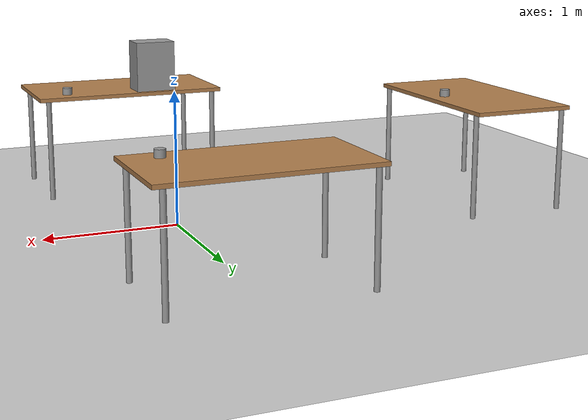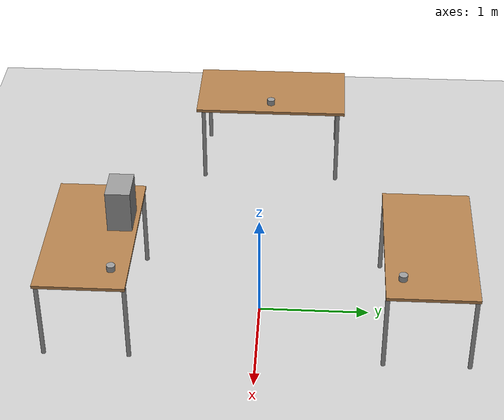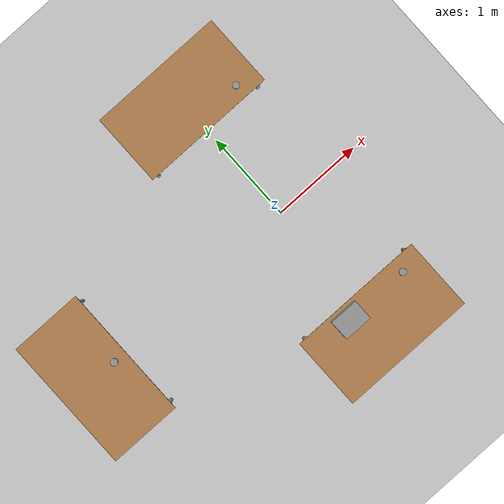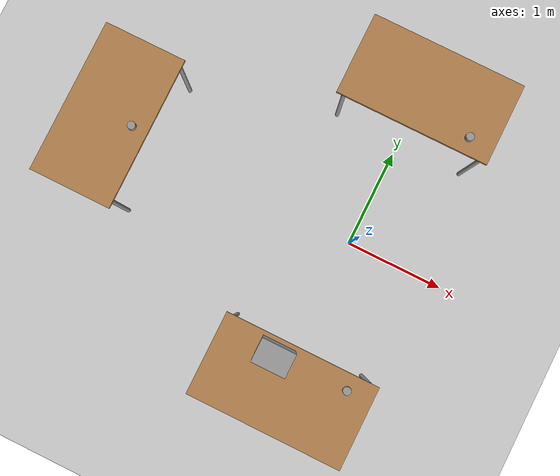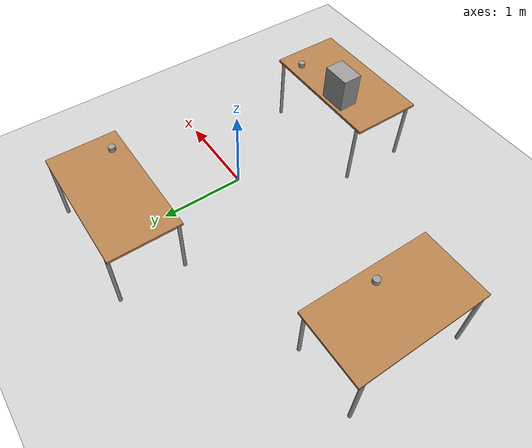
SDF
<sdf version="1.7">
 <world name="default">
  <light name="sun" type="directional">
   <pose>0 0 10 0 -0 0</pose>
   <diffuse>0.8 0.8 0.8 1</diffuse>
   <specular>0.2 0.2 0.2 1</specular>
   <attenuation>
    <range>1000</range>
    <constant>0.9</constant>
    <linear>0.01</linear>
    <quadratic>0.001</quadratic>
   </attenuation>
   <direction>-0.5 0.1 -0.9</direction>
   <spot><inner_angle>0</inner_angle><outer_angle>0</outer_angle><falloff>0</falloff></spot>
  </light>
  <model name="ground_plane">
   <static>1</static>
   <link name="link">
    <collision name="collision">
     <geometry><plane><normal>0 0 1</normal><size>100 100</size></plane></geometry>
     <surface><friction><ode><mu>100</mu><mu2>50</mu2></ode></friction></surface>
    </collision>
    <visual name="visual">
     <cast_shadows>0</cast_shadows>
     <geometry><plane><normal>0 0 1</normal><size>100 100</size></plane></geometry>
     <material>
      <script><uri>file://media/materials/scripts/gazebo.material</uri><name>Gazebo/Grey</name></script>
     </material>
    </visual>
   </link>
  </model>
  <gravity>0 0 -9.8</gravity>
  <magnetic_field>6e-06 2.3e-05 -4.2e-05</magnetic_field>
  <atmosphere type="adiabatic"/>
  <physics name="default_physics" default="0" type="ode">
   <max_step_size>0.001</max_step_size>
   <real_time_factor>1</real_time_factor>
   <real_time_update_rate>1000</real_time_update_rate>
  </physics>
  <scene><ambient>0.4 0.4 0.4 1</ambient><background>0.7 0.7 0.7 1</background><shadows>1</shadows></scene>
  <audio><device>default</device></audio>
  <spherical_coordinates>
   <surface_model>EARTH_WGS84</surface_model>
   <latitude_deg>0</latitude_deg>
   <longitude_deg>0</longitude_deg>
   <elevation>0</elevation>
   <heading_deg>0</heading_deg>
  </spherical_coordinates>
  <model name="table">
   <static>1</static>
   <link name="link">
    <collision name="surface">
     <pose>0 0 1 0 -0 0</pose>
     <geometry><box><size>1.5 0.8 0.03</size></box></geometry>
     <surface><friction><ode><mu>0.6</mu><mu2>0.6</mu2></ode></friction></surface>
    </collision>
    <visual name="visual1">
     <pose>0 0 1 0 -0 0</pose>
     <geometry><box><size>1.5 0.8 0.03</size></box></geometry>
     <material>
      <script><uri>file://media/materials/scripts/gazebo.material</uri><name>Gazebo/Wood</name></script>
     </material>
    </visual>
    <collision name="front_left_leg">
     <pose>0.68 0.38 0.5 0 -0 0</pose>
     <geometry><cylinder><radius>0.02</radius><length>1</length></cylinder></geometry>
    </collision>
    <visual name="front_left_leg">
     <pose>0.68 0.38 0.5 0 -0 0</pose>
     <geometry><cylinder><radius>0.02</radius><length>1</length></cylinder></geometry>
     <material>
      <script><uri>file://media/materials/scripts/gazebo.material</uri><name>Gazebo/Grey</name></script>
     </material>
    </visual>
    <collision name="front_right_leg">
     <pose>0.68 -0.38 0.5 0 -0 0</pose>
     <geometry><cylinder><radius>0.02</radius><length>1</length></cylinder></geometry>
    </collision>
    <visual name="front_right_leg">
     <pose>0.68 -0.38 0.5 0 -0 0</pose>
     <geometry><cylinder><radius>0.02</radius><length>1</length></cylinder></geometry>
     <material>
      <script><uri>file://media/materials/scripts/gazebo.material</uri><name>Gazebo/Grey</name></script>
     </material>
    </visual>
    <collision name="back_right_leg">
     <pose>-0.68 -0.38 0.5 0 -0 0</pose>
     <geometry><cylinder><radius>0.02</radius><length>1</length></cylinder></geometry>
    </collision>
    <visual name="back_right_leg">
     <pose>-0.68 -0.38 0.5 0 -0 0</pose>
     <geometry><cylinder><radius>0.02</radius><length>1</length></cylinder></geometry>
     <material>
      <script><uri>file://media/materials/scripts/gazebo.material</uri><name>Gazebo/Grey</name></script>
     </material>
    </visual>
    <collision name="back_left_leg">
     <pose>-0.68 0.38 0.5 0 -0 0</pose>
     <geometry><cylinder><radius>0.02</radius><length>1</length></cylinder></geometry>
    </collision>
    <visual name="back_left_leg">
     <pose>-0.68 0.38 0.5 0 -0 0</pose>
     <geometry><cylinder><radius>0.02</radius><length>1</length></cylinder></geometry>
     <material>
      <script><uri>file://media/materials/scripts/gazebo.material</uri><name>Gazebo/Grey</name></script>
     </material>
    </visual>
   </link>
   <pose>-2.5 0 -0.2 0 -0 1.5708</pose>
  </model>
  <model name="table_clone">
   <static>1</static>
   <link name="link">
    <collision name="surface">
     <pose>0 0 1 0 -0 0</pose>
     <geometry><box><size>1.5 0.8 0.03</size></box></geometry>
     <surface><friction><ode><mu>0.6</mu><mu2>0.6</mu2></ode></friction></surface>
    </collision>
    <visual name="visual1">
     <pose>0 0 1 0 -0 0</pose>
     <geometry><box><size>1.5 0.8 0.03</size></box></geometry>
     <material>
      <script><uri>file://media/materials/scripts/gazebo.material</uri><name>Gazebo/Wood</name></script>
     </material>
    </visual>
    <collision name="front_left_leg">
     <pose>0.68 0.38 0.5 0 -0 0</pose>
     <geometry><cylinder><radius>0.02</radius><length>1</length></cylinder></geometry>
    </collision>
    <visual name="front_left_leg">
     <pose>0.68 0.38 0.5 0 -0 0</pose>
     <geometry><cylinder><radius>0.02</radius><length>1</length></cylinder></geometry>
     <material>
      <script><uri>file://media/materials/scripts/gazebo.material</uri><name>Gazebo/Grey</name></script>
     </material>
    </visual>
    <collision name="front_right_leg">
     <pose>0.68 -0.38 0.5 0 -0 0</pose>
     <geometry><cylinder><radius>0.02</radius><length>1</length></cylinder></geometry>
    </collision>
    <visual name="front_right_leg">
     <pose>0.68 -0.38 0.5 0 -0 0</pose>
     <geometry><cylinder><radius>0.02</radius><length>1</length></cylinder></geometry>
     <material>
      <script><uri>file://media/materials/scripts/gazebo.material</uri><name>Gazebo/Grey</name></script>
     </material>
    </visual>
    <collision name="back_right_leg">
     <pose>-0.68 -0.38 0.5 0 -0 0</pose>
     <geometry><cylinder><radius>0.02</radius><length>1</length></cylinder></geometry>
    </collision>
    <visual name="back_right_leg">
     <pose>-0.68 -0.38 0.5 0 -0 0</pose>
     <geometry><cylinder><radius>0.02</radius><length>1</length></cylinder></geometry>
     <material>
      <script><uri>file://media/materials/scripts/gazebo.material</uri><name>Gazebo/Grey</name></script>
     </material>
    </visual>
    <collision name="back_left_leg">
     <pose>-0.68 0.38 0.5 0 -0 0</pose>
     <geometry><cylinder><radius>0.02</radius><length>1</length></cylinder></geometry>
    </collision>
    <visual name="back_left_leg">
     <pose>-0.68 0.38 0.5 0 -0 0</pose>
     <geometry><cylinder><radius>0.02</radius><length>1</length></cylinder></geometry>
     <material>
      <script><uri>file://media/materials/scripts/gazebo.material</uri><name>Gazebo/Grey</name></script>
     </material>
    </visual>
   </link>
   <pose>0 1.5 -0.2 0 -0 0</pose>
  </model>
  <model name="table_clone_0">
   <static>1</static>
   <link name="link">
    <collision name="surface">
     <pose>0 0 1 0 -0 0</pose>
     <geometry><box><size>1.5 0.8 0.03</size></box></geometry>
     <surface><friction><ode><mu>0.6</mu><mu2>0.6</mu2></ode></friction></surface>
    </collision>
    <visual name="visual1">
     <pose>0 0 1 0 -0 0</pose>
     <geometry><box><size>1.5 0.8 0.03</size></box></geometry>
     <material>
      <script><uri>file://media/materials/scripts/gazebo.material</uri><name>Gazebo/Wood</name></script>
     </material>
    </visual>
    <collision name="front_left_leg">
     <pose>0.68 0.38 0.5 0 -0 0</pose>
     <geometry><cylinder><radius>0.02</radius><length>1</length></cylinder></geometry>
    </collision>
    <visual name="front_left_leg">
     <pose>0.68 0.38 0.5 0 -0 0</pose>
     <geometry><cylinder><radius>0.02</radius><length>1</length></cylinder></geometry>
     <material>
      <script><uri>file://media/materials/scripts/gazebo.material</uri><name>Gazebo/Grey</name></script>
     </material>
    </visual>
    <collision name="front_right_leg">
     <pose>0.68 -0.38 0.5 0 -0 0</pose>
     <geometry><cylinder><radius>0.02</radius><length>1</length></cylinder></geometry>
    </collision>
    <visual name="front_right_leg">
     <pose>0.68 -0.38 0.5 0 -0 0</pose>
     <geometry><cylinder><radius>0.02</radius><length>1</length></cylinder></geometry>
     <material>
      <script><uri>file://media/materials/scripts/gazebo.material</uri><name>Gazebo/Grey</name></script>
     </material>
    </visual>
    <collision name="back_right_leg">
     <pose>-0.68 -0.38 0.5 0 -0 0</pose>
     <geometry><cylinder><radius>0.02</radius><length>1</length></cylinder></geometry>
    </collision>
    <visual name="back_right_leg">
     <pose>-0.68 -0.38 0.5 0 -0 0</pose>
     <geometry><cylinder><radius>0.02</radius><length>1</length></cylinder></geometry>
     <material>
      <script><uri>file://media/materials/scripts/gazebo.material</uri><name>Gazebo/Grey</name></script>
     </material>
    </visual>
    <collision name="back_left_leg">
     <pose>-0.68 0.38 0.5 0 -0 0</pose>
     <geometry><cylinder><radius>0.02</radius><length>1</length></cylinder></geometry>
    </collision>
    <visual name="back_left_leg">
     <pose>-0.68 0.38 0.5 0 -0 0</pose>
     <geometry><cylinder><radius>0.02</radius><length>1</length></cylinder></geometry>
     <material>
      <script><uri>file://media/materials/scripts/gazebo.material</uri><name>Gazebo/Grey</name></script>
     </material>
    </visual>
   </link>
   <pose>0 -1.5 -0.2 0 -0 0</pose>
  </model>
  <model name="unit_box_clone_clone_clone">
   <pose>-0.210615 -1.25 1.01388 0 0 -7.1e-05</pose>
   <link name="link">
    <inertial>
     <mass>1</mass>
     <inertia>
      <ixx>0.166667</ixx>
      <ixy>0</ixy>
      <ixz>0</ixz>
      <iyy>0.166667</iyy>
      <iyz>0</iyz>
      <izz>0.166667</izz>
     </inertia>
    </inertial>
    <collision name="collision">
     <geometry><box><size>0.317009 0.222267 0.397763</size></box></geometry>
    </collision>
    <visual name="visual">
     <geometry><box><size>0.317009 0.222267 0.397763</size></box></geometry>
     <material>
      <script><name>Gazebo/Grey</name><uri>file://media/materials/scripts/gazebo.material</uri></script>
     </material>
    </visual>
   </link>
  </model>
  <model name="unit_cylinder_clone">
   <pose>-2.25 5e-06 0.842491 -0.00017 7.5e-05 -3.2e-05</pose>
   <link name="link">
    <inertial>
     <mass>1</mass>
     <inertia><ixx>0.145833</ixx><ixy>0</ixy><ixz>0</ixz><iyy>0.145833</iyy><iyz>0</iyz><izz>0.125</izz></inertia>
    </inertial>
    <collision name="collision">
     <geometry><cylinder><radius>0.0382692</radius><length>0.0549689</length></cylinder></geometry>
    </collision>
    <visual name="visual">
     <geometry><cylinder><radius>0.0382692</radius><length>0.0549689</length></cylinder></geometry>
     <material>
      <script><name>Gazebo/Grey</name><uri>file://media/materials/scripts/gazebo.material</uri></script>
     </material>
    </visual>
   </link>
  </model>
  <model name="unit_cylinder_clone_clone">
   <pose>0.5 -1.25 0.842485 -0.000119 5.5e-05 -0.000161</pose>
   <link name="link">
    <inertial>
     <mass>1</mass>
     <inertia><ixx>0.145833</ixx><ixy>0</ixy><ixz>0</ixz><iyy>0.145833</iyy><iyz>0</iyz><izz>0.125</izz></inertia>
    </inertial>
    <collision name="collision">
     <geometry><cylinder><radius>0.0382692</radius><length>0.0549689</length></cylinder></geometry>
    </collision>
    <visual name="visual">
     <geometry><cylinder><radius>0.0382692</radius><length>0.0549689</length></cylinder></geometry>
     <material>
      <script><name>Gazebo/Grey</name><uri>file://media/materials/scripts/gazebo.material</uri></script>
     </material>
    </visual>
   </link>
  </model>
  <model name="unit_cylinder_clone_clone_0">
   <pose>0.499886 1.25001 0.842484 -0.000106 7.3e-05 0.001862</pose>
   <link name="link">
    <inertial>
     <mass>1</mass>
     <inertia><ixx>0.145833</ixx><ixy>0</ixy><ixz>0</ixz><iyy>0.145833</iyy><iyz>0</iyz><izz>0.125</izz></inertia>
    </inertial>
    <collision name="collision">
     <geometry><cylinder><radius>0.0382692</radius><length>0.0549689</length></cylinder></geometry>
    </collision>
    <visual name="visual">
     <geometry><cylinder><radius>0.0382692</radius><length>0.0549689</length></cylinder></geometry>
     <material>
      <script><name>Gazebo/Grey</name><uri>file://media/materials/scripts/gazebo.material</uri></script>
     </material>
    </visual>
   </link>
  </model>
 </world>
</sdf>
